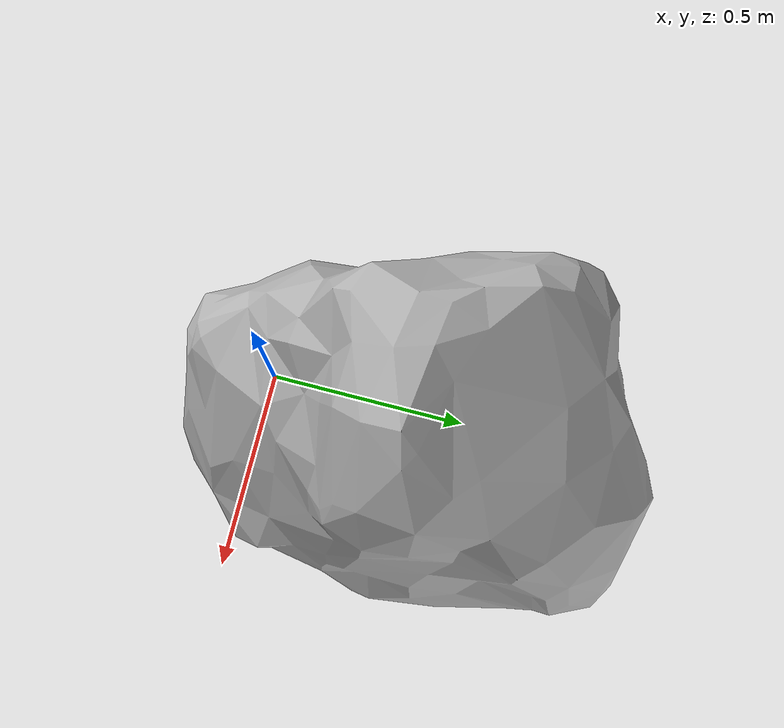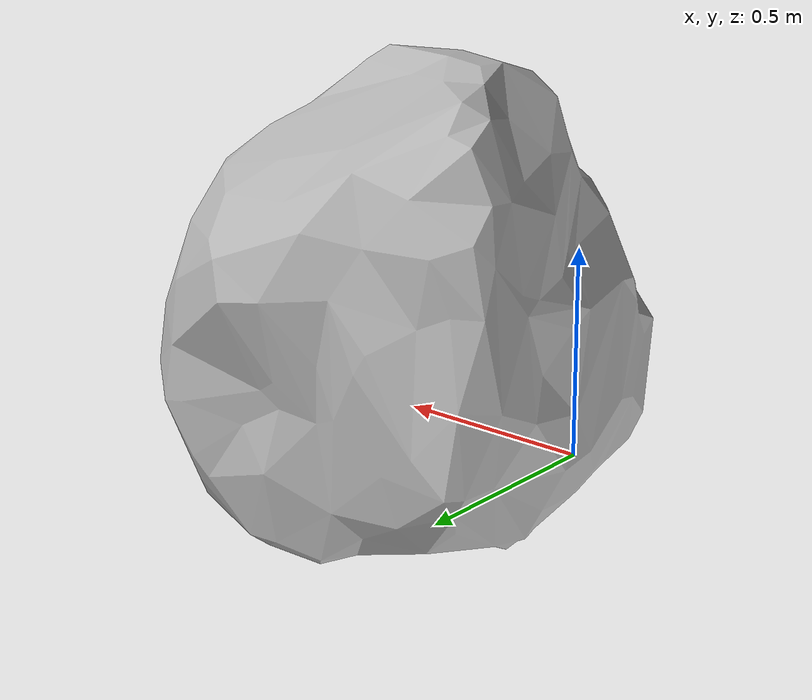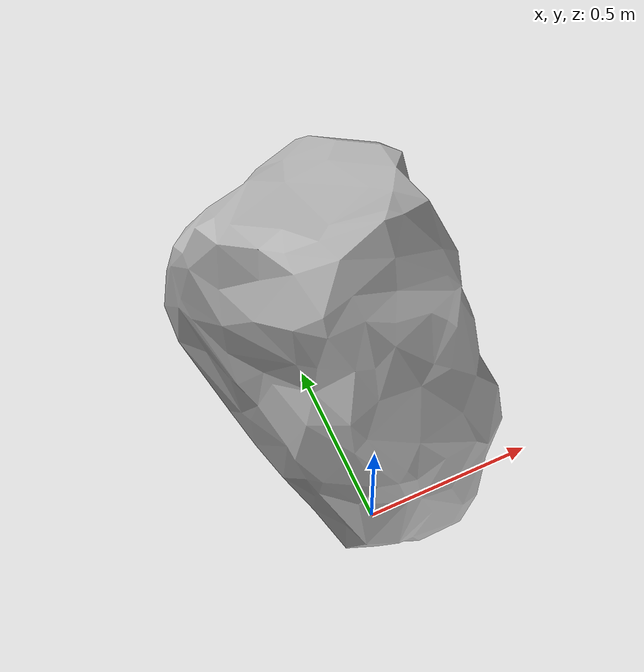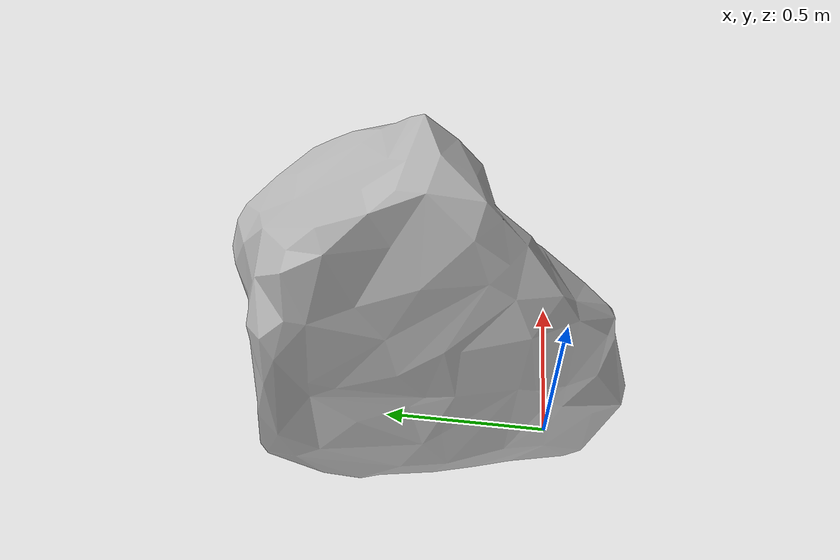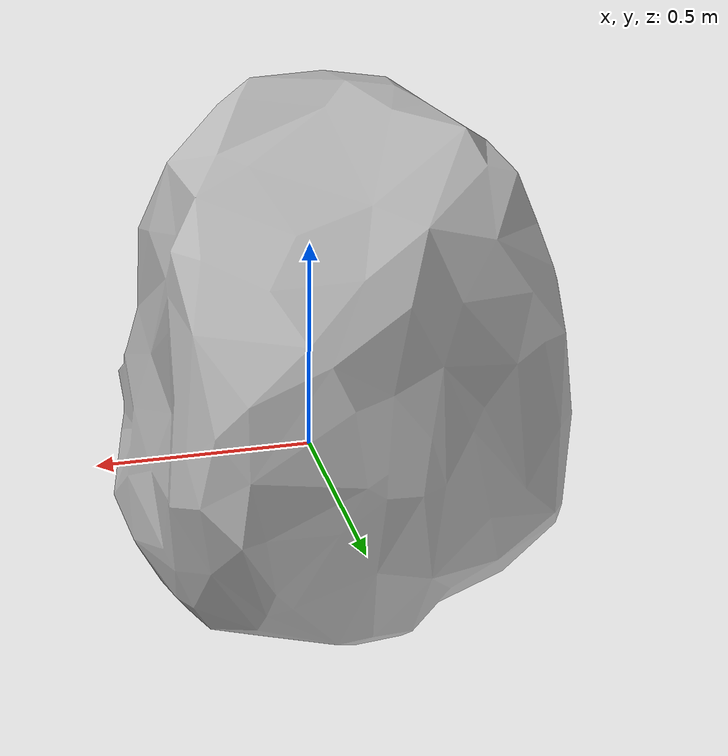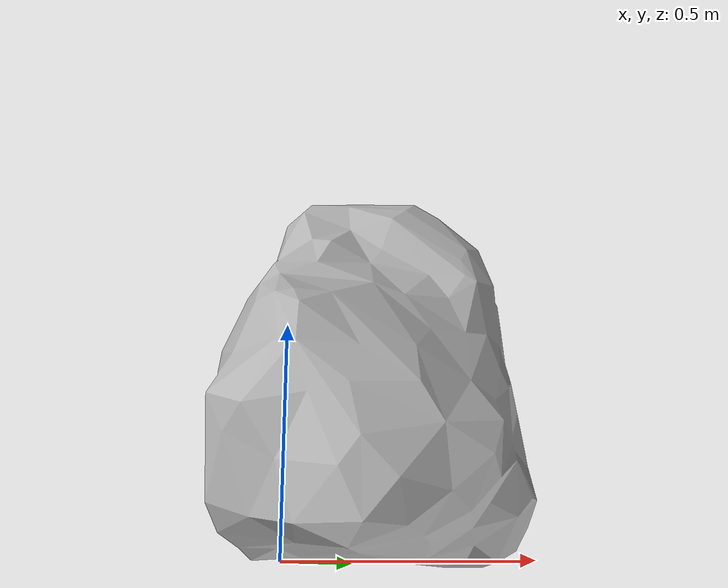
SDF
<?xml version="1.0" ?>
<sdf version="1.4">
    <model name="stone1">
      <pose>0 0 0 0 0 0</pose>
        <static>false</static>
	  <link name="stone1_link">
	    <collision name="stone1_collision">
	      <geometry>
                <mesh>
		  <uri>model://stone1/meshes/s1.dae</uri>
                    <scale>1 1 1</scale>
		</mesh>
	      </geometry>
	    </collision>

	    <visual name="stone1_visual">
	      <geometry>
            	<mesh>
		  <uri>model://stone1/meshes/s1.dae</uri>
                  <scale>1 1 1</scale>
		</mesh>
	      </geometry>
	    </visual>

    </link>
  </model>
</sdf>
